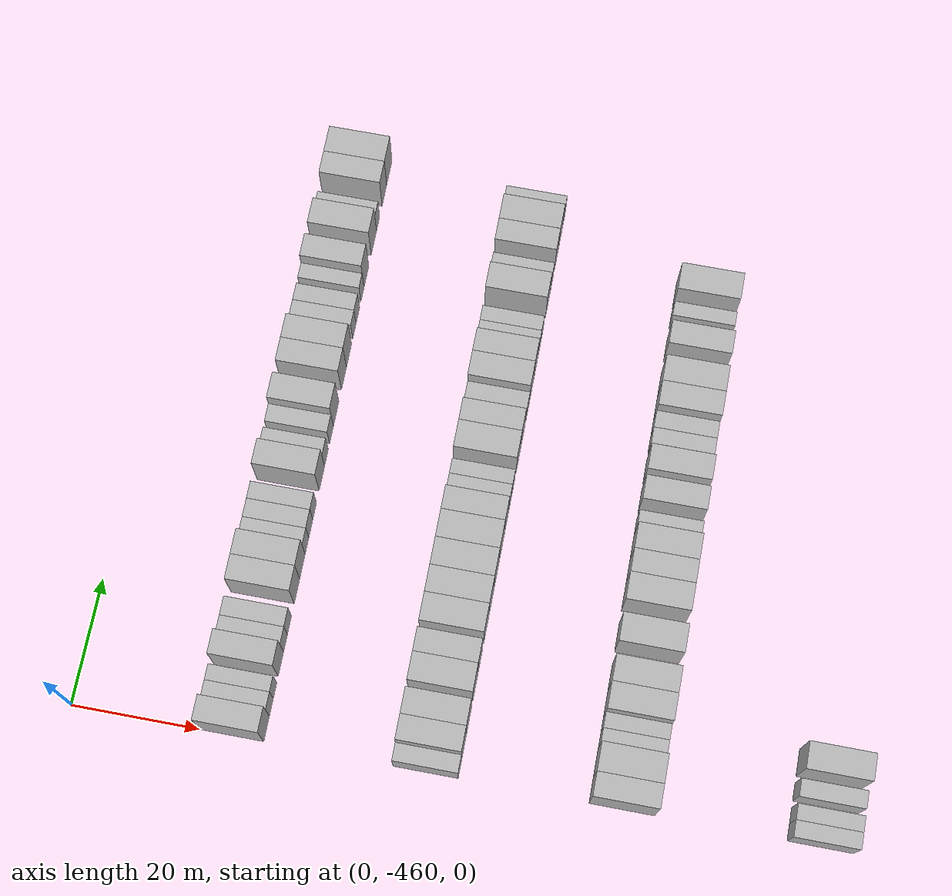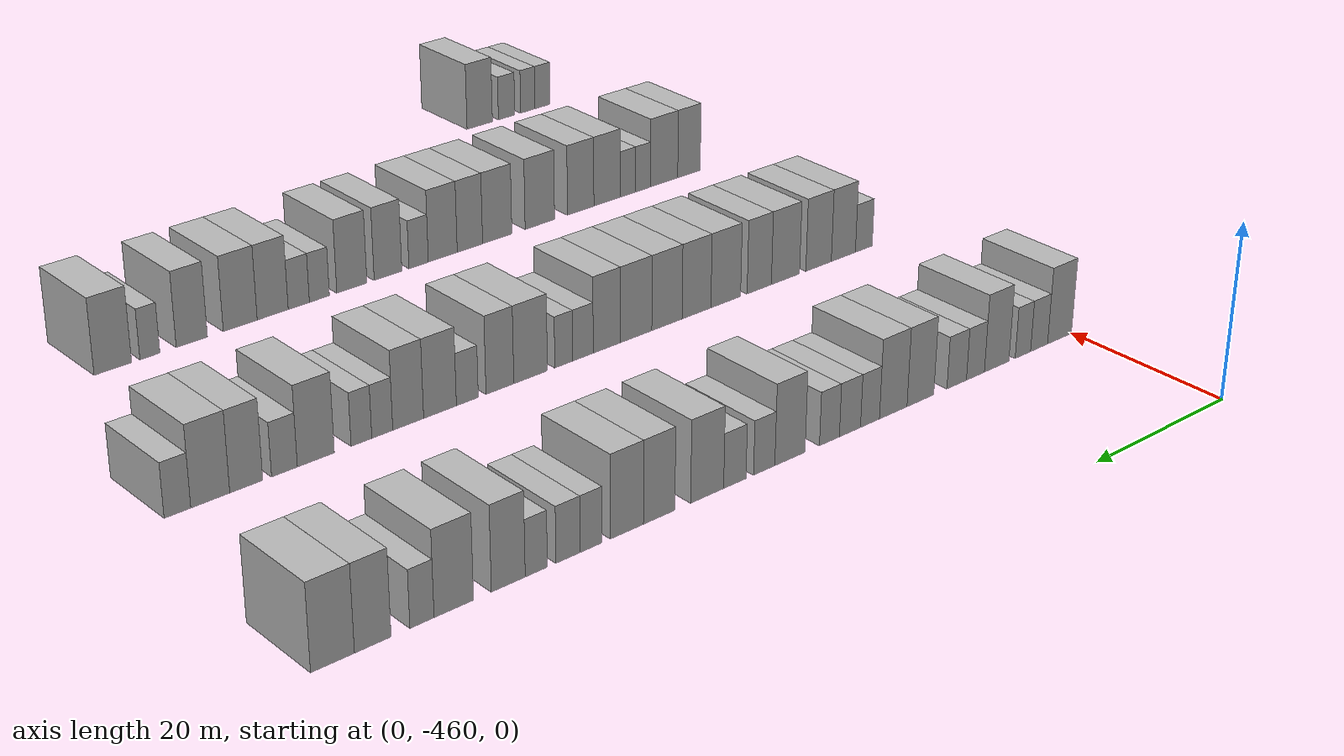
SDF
<sdf version="1.6">
 <world name="default">
  <model name="building_1">
   <static>1</static>
   <pose>25.0000 -458.0347 0 0.000000 0.000000 0.000000</pose>
   <link name="link">
    <pose>0 0 4.50 0 0 0</pose>
    <collision name="collision"><geometry><box><size>10.0000 3.9307 9.0000</size></box></geometry></collision>
    <visual name="visual">
     <cast_shadows>0</cast_shadows>
     <geometry><box><size>10.0000 3.9307 9.0000</size></box></geometry>
     <material>
      <script>
       <uri>model://HANNAS_wall/materials/scripts</uri>
       <uri>model://HANNAS_wall/materials/textures</uri>
       <name>vrc/HANNAS_wall</name>
      </script>
     </material>
    </visual>
   </link>
  </model>
  <model name="building_2">
   <static>1</static>
   <pose>25.0000 -454.6919 0 0.000000 0.000000 0.000000</pose>
   <link name="link">
    <pose>0 0 3.00 0 0 0</pose>
    <collision name="collision"><geometry><box><size>10.0000 2.7548 6.0000</size></box></geometry></collision>
    <visual name="visual">
     <cast_shadows>0</cast_shadows>
     <geometry><box><size>10.0000 2.7548 6.0000</size></box></geometry>
     <material>
      <script>
       <uri>model://HANNAS_wall/materials/scripts</uri>
       <uri>model://HANNAS_wall/materials/textures</uri>
       <name>vrc/HANNAS_wall</name>
      </script>
     </material>
    </visual>
   </link>
  </model>
  <model name="building_3">
   <static>1</static>
   <pose>25.0000 -452.0797 0 0.000000 0.000000 0.000000</pose>
   <link name="link">
    <pose>0 0 3.00 0 0 0</pose>
    <collision name="collision"><geometry><box><size>10.0000 2.4697 6.0000</size></box></geometry></collision>
    <visual name="visual">
     <cast_shadows>0</cast_shadows>
     <geometry><box><size>10.0000 2.4697 6.0000</size></box></geometry>
     <material>
      <script>
       <uri>model://HANNAS_wall/materials/scripts</uri>
       <uri>model://HANNAS_wall/materials/textures</uri>
       <name>vrc/HANNAS_wall</name>
      </script>
     </material>
    </visual>
   </link>
  </model>
  <model name="building_4">
   <static>1</static>
   <pose>25.0000 -447.9195 0 0.000000 0.000000 0.000000</pose>
   <link name="link">
    <pose>0 0 4.50 0 0 0</pose>
    <collision name="collision"><geometry><box><size>10.0000 3.8506 9.0000</size></box></geometry></collision>
    <visual name="visual">
     <cast_shadows>0</cast_shadows>
     <geometry><box><size>10.0000 3.8506 9.0000</size></box></geometry>
     <material>
      <script>
       <uri>model://HANNAS_wall/materials/scripts</uri>
       <uri>model://HANNAS_wall/materials/textures</uri>
       <name>vrc/HANNAS_wall</name>
      </script>
     </material>
    </visual>
   </link>
  </model>
  <model name="building_5">
   <static>1</static>
   <pose>25.0000 -444.6043 0 0.000000 0.000000 0.000000</pose>
   <link name="link">
    <pose>0 0 3.00 0 0 0</pose>
    <collision name="collision"><geometry><box><size>10.0000 2.7799 6.0000</size></box></geometry></collision>
    <visual name="visual">
     <cast_shadows>0</cast_shadows>
     <geometry><box><size>10.0000 2.7799 6.0000</size></box></geometry>
     <material>
      <script>
       <uri>model://HANNAS_wall/materials/scripts</uri>
       <uri>model://HANNAS_wall/materials/textures</uri>
       <name>vrc/HANNAS_wall</name>
      </script>
     </material>
    </visual>
   </link>
  </model>
  <model name="building_6">
   <static>1</static>
   <pose>25.0000 -441.7249 0 0.000000 0.000000 0.000000</pose>
   <link name="link">
    <pose>0 0 3.00 0 0 0</pose>
    <collision name="collision"><geometry><box><size>10.0000 2.9789 6.0000</size></box></geometry></collision>
    <visual name="visual">
     <cast_shadows>0</cast_shadows>
     <geometry><box><size>10.0000 2.9789 6.0000</size></box></geometry>
     <material>
      <script>
       <uri>model://HANNAS_wall/materials/scripts</uri>
       <uri>model://HANNAS_wall/materials/textures</uri>
       <name>vrc/HANNAS_wall</name>
      </script>
     </material>
    </visual>
   </link>
  </model>
  <model name="building_7">
   <static>1</static>
   <pose>25.0000 -436.2437 0 0.000000 0.000000 0.000000</pose>
   <link name="link">
    <pose>0 0 4.50 0 0 0</pose>
    <collision name="collision"><geometry><box><size>10.0000 3.9835 9.0000</size></box></geometry></collision>
    <visual name="visual">
     <cast_shadows>0</cast_shadows>
     <geometry><box><size>10.0000 3.9835 9.0000</size></box></geometry>
     <material>
      <script>
       <uri>model://HANNAS_wall/materials/scripts</uri>
       <uri>model://HANNAS_wall/materials/textures</uri>
       <name>vrc/HANNAS_wall</name>
      </script>
     </material>
    </visual>
   </link>
  </model>
  <model name="building_8">
   <static>1</static>
   <pose>25.0000 -432.2339 0 0.000000 0.000000 0.000000</pose>
   <link name="link">
    <pose>0 0 4.50 0 0 0</pose>
    <collision name="collision"><geometry><box><size>10.0000 4.0362 9.0000</size></box></geometry></collision>
    <visual name="visual">
     <cast_shadows>0</cast_shadows>
     <geometry><box><size>10.0000 4.0362 9.0000</size></box></geometry>
     <material>
      <script>
       <uri>model://HANNAS_wall/materials/scripts</uri>
       <uri>model://HANNAS_wall/materials/textures</uri>
       <name>vrc/HANNAS_wall</name>
      </script>
     </material>
    </visual>
   </link>
  </model>
  <model name="building_9">
   <static>1</static>
   <pose>25.0000 -428.8545 0 0.000000 0.000000 0.000000</pose>
   <link name="link">
    <pose>0 0 3.00 0 0 0</pose>
    <collision name="collision"><geometry><box><size>10.0000 2.7226 6.0000</size></box></geometry></collision>
    <visual name="visual">
     <cast_shadows>0</cast_shadows>
     <geometry><box><size>10.0000 2.7226 6.0000</size></box></geometry>
     <material>
      <script>
       <uri>model://HANNAS_wall/materials/scripts</uri>
       <uri>model://HANNAS_wall/materials/textures</uri>
       <name>vrc/HANNAS_wall</name>
      </script>
     </material>
    </visual>
   </link>
  </model>
  <model name="building_10">
   <static>1</static>
   <pose>25.0000 -425.9957 0 0.000000 0.000000 0.000000</pose>
   <link name="link">
    <pose>0 0 3.00 0 0 0</pose>
    <collision name="collision"><geometry><box><size>10.0000 2.9950 6.0000</size></box></geometry></collision>
    <visual name="visual">
     <cast_shadows>0</cast_shadows>
     <geometry><box><size>10.0000 2.9950 6.0000</size></box></geometry>
     <material>
      <script>
       <uri>model://HANNAS_wall/materials/scripts</uri>
       <uri>model://HANNAS_wall/materials/textures</uri>
       <name>vrc/HANNAS_wall</name>
      </script>
     </material>
    </visual>
   </link>
  </model>
  <model name="building_11">
   <static>1</static>
   <pose>25.0000 -423.1064 0 0.000000 0.000000 0.000000</pose>
   <link name="link">
    <pose>0 0 3.00 0 0 0</pose>
    <collision name="collision"><geometry><box><size>10.0000 2.7835 6.0000</size></box></geometry></collision>
    <visual name="visual">
     <cast_shadows>0</cast_shadows>
     <geometry><box><size>10.0000 2.7835 6.0000</size></box></geometry>
     <material>
      <script>
       <uri>model://HANNAS_wall/materials/scripts</uri>
       <uri>model://HANNAS_wall/materials/textures</uri>
       <name>vrc/HANNAS_wall</name>
      </script>
     </material>
    </visual>
   </link>
  </model>
  <model name="building_12">
   <static>1</static>
   <pose>25.0000 -417.6575 0 0.000000 0.000000 0.000000</pose>
   <link name="link">
    <pose>0 0 4.50 0 0 0</pose>
    <collision name="collision"><geometry><box><size>10.0000 4.1143 9.0000</size></box></geometry></collision>
    <visual name="visual">
     <cast_shadows>0</cast_shadows>
     <geometry><box><size>10.0000 4.1143 9.0000</size></box></geometry>
     <material>
      <script>
       <uri>model://HANNAS_wall/materials/scripts</uri>
       <uri>model://HANNAS_wall/materials/textures</uri>
       <name>vrc/HANNAS_wall</name>
      </script>
     </material>
    </visual>
   </link>
  </model>
  <model name="building_13">
   <static>1</static>
   <pose>25.0000 -414.1773 0 0.000000 0.000000 0.000000</pose>
   <link name="link">
    <pose>0 0 3.00 0 0 0</pose>
    <collision name="collision"><geometry><box><size>10.0000 2.8461 6.0000</size></box></geometry></collision>
    <visual name="visual">
     <cast_shadows>0</cast_shadows>
     <geometry><box><size>10.0000 2.8461 6.0000</size></box></geometry>
     <material>
      <script>
       <uri>model://HANNAS_wall/materials/scripts</uri>
       <uri>model://HANNAS_wall/materials/textures</uri>
       <name>vrc/HANNAS_wall</name>
      </script>
     </material>
    </visual>
   </link>
  </model>
  <model name="building_14">
   <static>1</static>
   <pose>25.0000 -410.2872 0 0.000000 0.000000 0.000000</pose>
   <link name="link">
    <pose>0 0 3.00 0 0 0</pose>
    <collision name="collision"><geometry><box><size>10.0000 2.9340 6.0000</size></box></geometry></collision>
    <visual name="visual">
     <cast_shadows>0</cast_shadows>
     <geometry><box><size>10.0000 2.9340 6.0000</size></box></geometry>
     <material>
      <script>
       <uri>model://HANNAS_wall/materials/scripts</uri>
       <uri>model://HANNAS_wall/materials/textures</uri>
       <name>vrc/HANNAS_wall</name>
      </script>
     </material>
    </visual>
   </link>
  </model>
  <model name="building_15">
   <static>1</static>
   <pose>25.0000 -406.6927 0 0.000000 0.000000 0.000000</pose>
   <link name="link">
    <pose>0 0 4.50 0 0 0</pose>
    <collision name="collision"><geometry><box><size>10.0000 4.2550 9.0000</size></box></geometry></collision>
    <visual name="visual">
     <cast_shadows>0</cast_shadows>
     <geometry><box><size>10.0000 4.2550 9.0000</size></box></geometry>
     <material>
      <script>
       <uri>model://HANNAS_wall/materials/scripts</uri>
       <uri>model://HANNAS_wall/materials/textures</uri>
       <name>vrc/HANNAS_wall</name>
      </script>
     </material>
    </visual>
   </link>
  </model>
  <model name="building_16">
   <static>1</static>
   <pose>25.0000 -400.6007 0 0.000000 0.000000 0.000000</pose>
   <link name="link">
    <pose>0 0 4.50 0 0 0</pose>
    <collision name="collision"><geometry><box><size>10.0000 3.9290 9.0000</size></box></geometry></collision>
    <visual name="visual">
     <cast_shadows>0</cast_shadows>
     <geometry><box><size>10.0000 3.9290 9.0000</size></box></geometry>
     <material>
      <script>
       <uri>model://HANNAS_wall/materials/scripts</uri>
       <uri>model://HANNAS_wall/materials/textures</uri>
       <name>vrc/HANNAS_wall</name>
      </script>
     </material>
    </visual>
   </link>
  </model>
  <model name="building_17">
   <static>1</static>
   <pose>25.0000 -396.6170 0 0.000000 0.000000 0.000000</pose>
   <link name="link">
    <pose>0 0 4.50 0 0 0</pose>
    <collision name="collision"><geometry><box><size>10.0000 4.0384 9.0000</size></box></geometry></collision>
    <visual name="visual">
     <cast_shadows>0</cast_shadows>
     <geometry><box><size>10.0000 4.0384 9.0000</size></box></geometry>
     <material>
      <script>
       <uri>model://HANNAS_wall/materials/scripts</uri>
       <uri>model://HANNAS_wall/materials/textures</uri>
       <name>vrc/HANNAS_wall</name>
      </script>
     </material>
    </visual>
   </link>
  </model>
  <model name="building_18">
   <static>1</static>
   <pose>25.0000 -392.2894 0 0.000000 0.000000 0.000000</pose>
   <link name="link">
    <pose>0 0 3.00 0 0 0</pose>
    <collision name="collision"><geometry><box><size>10.0000 2.6169 6.0000</size></box></geometry></collision>
    <visual name="visual">
     <cast_shadows>0</cast_shadows>
     <geometry><box><size>10.0000 2.6169 6.0000</size></box></geometry>
     <material>
      <script>
       <uri>model://HANNAS_wall/materials/scripts</uri>
       <uri>model://HANNAS_wall/materials/textures</uri>
       <name>vrc/HANNAS_wall</name>
      </script>
     </material>
    </visual>
   </link>
  </model>
  <model name="building_19">
   <static>1</static>
   <pose>25.0000 -389.5460 0 0.000000 0.000000 0.000000</pose>
   <link name="link">
    <pose>0 0 3.00 0 0 0</pose>
    <collision name="collision"><geometry><box><size>10.0000 2.8698 6.0000</size></box></geometry></collision>
    <visual name="visual">
     <cast_shadows>0</cast_shadows>
     <geometry><box><size>10.0000 2.8698 6.0000</size></box></geometry>
     <material>
      <script>
       <uri>model://HANNAS_wall/materials/scripts</uri>
       <uri>model://HANNAS_wall/materials/textures</uri>
       <name>vrc/HANNAS_wall</name>
      </script>
     </material>
    </visual>
   </link>
  </model>
  <model name="building_20">
   <static>1</static>
   <pose>25.0000 -385.8334 0 0.000000 0.000000 0.000000</pose>
   <link name="link">
    <pose>0 0 3.00 0 0 0</pose>
    <collision name="collision"><geometry><box><size>10.0000 2.5554 6.0000</size></box></geometry></collision>
    <visual name="visual">
     <cast_shadows>0</cast_shadows>
     <geometry><box><size>10.0000 2.5554 6.0000</size></box></geometry>
     <material>
      <script>
       <uri>model://HANNAS_wall/materials/scripts</uri>
       <uri>model://HANNAS_wall/materials/textures</uri>
       <name>vrc/HANNAS_wall</name>
      </script>
     </material>
    </visual>
   </link>
  </model>
  <model name="building_21">
   <static>1</static>
   <pose>25.0000 -382.6334 0 0.000000 0.000000 0.000000</pose>
   <link name="link">
    <pose>0 0 4.50 0 0 0</pose>
    <collision name="collision"><geometry><box><size>10.0000 3.8446 9.0000</size></box></geometry></collision>
    <visual name="visual">
     <cast_shadows>0</cast_shadows>
     <geometry><box><size>10.0000 3.8446 9.0000</size></box></geometry>
     <material>
      <script>
       <uri>model://HANNAS_wall/materials/scripts</uri>
       <uri>model://HANNAS_wall/materials/textures</uri>
       <name>vrc/HANNAS_wall</name>
      </script>
     </material>
    </visual>
   </link>
  </model>
  <model name="building_22">
   <static>1</static>
   <pose>25.0000 -376.5462 0 0.000000 0.000000 0.000000</pose>
   <link name="link">
    <pose>0 0 4.50 0 0 0</pose>
    <collision name="collision"><geometry><box><size>10.0000 4.3296 9.0000</size></box></geometry></collision>
    <visual name="visual">
     <cast_shadows>0</cast_shadows>
     <geometry><box><size>10.0000 4.3296 9.0000</size></box></geometry>
     <material>
      <script>
       <uri>model://HANNAS_wall/materials/scripts</uri>
       <uri>model://HANNAS_wall/materials/textures</uri>
       <name>vrc/HANNAS_wall</name>
      </script>
     </material>
    </visual>
   </link>
  </model>
  <model name="building_23">
   <static>1</static>
   <pose>25.0000 -373.0783 0 0.000000 0.000000 0.000000</pose>
   <link name="link">
    <pose>0 0 3.00 0 0 0</pose>
    <collision name="collision"><geometry><box><size>10.0000 2.6063 6.0000</size></box></geometry></collision>
    <visual name="visual">
     <cast_shadows>0</cast_shadows>
     <geometry><box><size>10.0000 2.6063 6.0000</size></box></geometry>
     <material>
      <script>
       <uri>model://HANNAS_wall/materials/scripts</uri>
       <uri>model://HANNAS_wall/materials/textures</uri>
       <name>vrc/HANNAS_wall</name>
      </script>
     </material>
    </visual>
   </link>
  </model>
  <model name="building_24">
   <static>1</static>
   <pose>25.0000 -367.8583 0 0.000000 0.000000 0.000000</pose>
   <link name="link">
    <pose>0 0 4.50 0 0 0</pose>
    <collision name="collision"><geometry><box><size>10.0000 3.8336 9.0000</size></box></geometry></collision>
    <visual name="visual">
     <cast_shadows>0</cast_shadows>
     <geometry><box><size>10.0000 3.8336 9.0000</size></box></geometry>
     <material>
      <script>
       <uri>model://HANNAS_wall/materials/scripts</uri>
       <uri>model://HANNAS_wall/materials/textures</uri>
       <name>vrc/HANNAS_wall</name>
      </script>
     </material>
    </visual>
   </link>
  </model>
  <model name="building_25">
   <static>1</static>
   <pose>25.0000 -363.6942 0 0.000000 0.000000 0.000000</pose>
   <link name="link">
    <pose>0 0 4.50 0 0 0</pose>
    <collision name="collision"><geometry><box><size>10.0000 4.4944 9.0000</size></box></geometry></collision>
    <visual name="visual">
     <cast_shadows>0</cast_shadows>
     <geometry><box><size>10.0000 4.4944 9.0000</size></box></geometry>
     <material>
      <script>
       <uri>model://HANNAS_wall/materials/scripts</uri>
       <uri>model://HANNAS_wall/materials/textures</uri>
       <name>vrc/HANNAS_wall</name>
      </script>
     </material>
    </visual>
   </link>
  </model>
  <model name="building_235">
   <static>1</static>
   <pose>55.0000 -458.6079 0 0.000000 0.000000 0.000000</pose>
   <link name="link">
    <pose>0 0 3.00 0 0 0</pose>
    <collision name="collision"><geometry><box><size>10.0000 2.7842 6.0000</size></box></geometry></collision>
    <visual name="visual">
     <cast_shadows>0</cast_shadows>
     <geometry><box><size>10.0000 2.7842 6.0000</size></box></geometry>
     <material>
      <script>
       <uri>model://HANNAS_wall/materials/scripts</uri>
       <uri>model://HANNAS_wall/materials/textures</uri>
       <name>vrc/HANNAS_wall</name>
      </script>
     </material>
    </visual>
   </link>
  </model>
  <model name="building_236">
   <static>1</static>
   <pose>55.0000 -455.2435 0 0.000000 0.000000 0.000000</pose>
   <link name="link">
    <pose>0 0 4.50 0 0 0</pose>
    <collision name="collision"><geometry><box><size>10.0000 3.9447 9.0000</size></box></geometry></collision>
    <visual name="visual">
     <cast_shadows>0</cast_shadows>
     <geometry><box><size>10.0000 3.9447 9.0000</size></box></geometry>
     <material>
      <script>
       <uri>model://HANNAS_wall/materials/scripts</uri>
       <uri>model://HANNAS_wall/materials/textures</uri>
       <name>vrc/HANNAS_wall</name>
      </script>
     </material>
    </visual>
   </link>
  </model>
  <model name="building_237">
   <static>1</static>
   <pose>55.0000 -451.2193 0 0.000000 0.000000 0.000000</pose>
   <link name="link">
    <pose>0 0 4.50 0 0 0</pose>
    <collision name="collision"><geometry><box><size>10.0000 4.1037 9.0000</size></box></geometry></collision>
    <visual name="visual">
     <cast_shadows>0</cast_shadows>
     <geometry><box><size>10.0000 4.1037 9.0000</size></box></geometry>
     <material>
      <script>
       <uri>model://HANNAS_wall/materials/scripts</uri>
       <uri>model://HANNAS_wall/materials/textures</uri>
       <name>vrc/HANNAS_wall</name>
      </script>
     </material>
    </visual>
   </link>
  </model>
  <model name="building_238">
   <static>1</static>
   <pose>55.0000 -445.9507 0 0.000000 0.000000 0.000000</pose>
   <link name="link">
    <pose>0 0 4.50 0 0 0</pose>
    <collision name="collision"><geometry><box><size>10.0000 4.4333 9.0000</size></box></geometry></collision>
    <visual name="visual">
     <cast_shadows>0</cast_shadows>
     <geometry><box><size>10.0000 4.4333 9.0000</size></box></geometry>
     <material>
      <script>
       <uri>model://HANNAS_wall/materials/scripts</uri>
       <uri>model://HANNAS_wall/materials/textures</uri>
       <name>vrc/HANNAS_wall</name>
      </script>
     </material>
    </visual>
   </link>
  </model>
  <model name="building_239">
   <static>1</static>
   <pose>55.0000 -441.8584 0 0.000000 0.000000 0.000000</pose>
   <link name="link">
    <pose>0 0 4.50 0 0 0</pose>
    <collision name="collision"><geometry><box><size>10.0000 3.7514 9.0000</size></box></geometry></collision>
    <visual name="visual">
     <cast_shadows>0</cast_shadows>
     <geometry><box><size>10.0000 3.7514 9.0000</size></box></geometry>
     <material>
      <script>
       <uri>model://HANNAS_wall/materials/scripts</uri>
       <uri>model://HANNAS_wall/materials/textures</uri>
       <name>vrc/HANNAS_wall</name>
      </script>
     </material>
    </visual>
   </link>
  </model>
  <model name="building_240">
   <static>1</static>
   <pose>55.0000 -436.7386 0 0.000000 0.000000 0.000000</pose>
   <link name="link">
    <pose>0 0 4.50 0 0 0</pose>
    <collision name="collision"><geometry><box><size>10.0000 4.4882 9.0000</size></box></geometry></collision>
    <visual name="visual">
     <cast_shadows>0</cast_shadows>
     <geometry><box><size>10.0000 4.4882 9.0000</size></box></geometry>
     <material>
      <script>
       <uri>model://HANNAS_wall/materials/scripts</uri>
       <uri>model://HANNAS_wall/materials/textures</uri>
       <name>vrc/HANNAS_wall</name>
      </script>
     </material>
    </visual>
   </link>
  </model>
  <model name="building_241">
   <static>1</static>
   <pose>55.0000 -432.3561 0 0.000000 0.000000 0.000000</pose>
   <link name="link">
    <pose>0 0 4.50 0 0 0</pose>
    <collision name="collision"><geometry><box><size>10.0000 4.2767 9.0000</size></box></geometry></collision>
    <visual name="visual">
     <cast_shadows>0</cast_shadows>
     <geometry><box><size>10.0000 4.2767 9.0000</size></box></geometry>
     <material>
      <script>
       <uri>model://HANNAS_wall/materials/scripts</uri>
       <uri>model://HANNAS_wall/materials/textures</uri>
       <name>vrc/HANNAS_wall</name>
      </script>
     </material>
    </visual>
   </link>
  </model>
  <model name="building_242">
   <static>1</static>
   <pose>55.0000 -428.0155 0 0.000000 0.000000 0.000000</pose>
   <link name="link">
    <pose>0 0 4.50 0 0 0</pose>
    <collision name="collision"><geometry><box><size>10.0000 4.4045 9.0000</size></box></geometry></collision>
    <visual name="visual">
     <cast_shadows>0</cast_shadows>
     <geometry><box><size>10.0000 4.4045 9.0000</size></box></geometry>
     <material>
      <script>
       <uri>model://HANNAS_wall/materials/scripts</uri>
       <uri>model://HANNAS_wall/materials/textures</uri>
       <name>vrc/HANNAS_wall</name>
      </script>
     </material>
    </visual>
   </link>
  </model>
  <model name="building_243">
   <static>1</static>
   <pose>55.0000 -423.5746 0 0.000000 0.000000 0.000000</pose>
   <link name="link">
    <pose>0 0 4.50 0 0 0</pose>
    <collision name="collision"><geometry><box><size>10.0000 4.4774 9.0000</size></box></geometry></collision>
    <visual name="visual">
     <cast_shadows>0</cast_shadows>
     <geometry><box><size>10.0000 4.4774 9.0000</size></box></geometry>
     <material>
      <script>
       <uri>model://HANNAS_wall/materials/scripts</uri>
       <uri>model://HANNAS_wall/materials/textures</uri>
       <name>vrc/HANNAS_wall</name>
      </script>
     </material>
    </visual>
   </link>
  </model>
  <model name="building_244">
   <static>1</static>
   <pose>55.0000 -419.4328 0 0.000000 0.000000 0.000000</pose>
   <link name="link">
    <pose>0 0 4.50 0 0 0</pose>
    <collision name="collision"><geometry><box><size>10.0000 3.8063 9.0000</size></box></geometry></collision>
    <visual name="visual">
     <cast_shadows>0</cast_shadows>
     <geometry><box><size>10.0000 3.8063 9.0000</size></box></geometry>
     <material>
      <script>
       <uri>model://HANNAS_wall/materials/scripts</uri>
       <uri>model://HANNAS_wall/materials/textures</uri>
       <name>vrc/HANNAS_wall</name>
      </script>
     </material>
    </visual>
   </link>
  </model>
  <model name="building_245">
   <static>1</static>
   <pose>55.0000 -416.1166 0 0.000000 0.000000 0.000000</pose>
   <link name="link">
    <pose>0 0 3.00 0 0 0</pose>
    <collision name="collision"><geometry><box><size>10.0000 2.8261 6.0000</size></box></geometry></collision>
    <visual name="visual">
     <cast_shadows>0</cast_shadows>
     <geometry><box><size>10.0000 2.8261 6.0000</size></box></geometry>
     <material>
      <script>
       <uri>model://HANNAS_wall/materials/scripts</uri>
       <uri>model://HANNAS_wall/materials/textures</uri>
       <name>vrc/HANNAS_wall</name>
      </script>
     </material>
    </visual>
   </link>
  </model>
  <model name="building_246">
   <static>1</static>
   <pose>55.0000 -413.4800 0 0.000000 0.000000 0.000000</pose>
   <link name="link">
    <pose>0 0 3.00 0 0 0</pose>
    <collision name="collision"><geometry><box><size>10.0000 2.4470 6.0000</size></box></geometry></collision>
    <visual name="visual">
     <cast_shadows>0</cast_shadows>
     <geometry><box><size>10.0000 2.4470 6.0000</size></box></geometry>
     <material>
      <script>
       <uri>model://HANNAS_wall/materials/scripts</uri>
       <uri>model://HANNAS_wall/materials/textures</uri>
       <name>vrc/HANNAS_wall</name>
      </script>
     </material>
    </visual>
   </link>
  </model>
  <model name="building_247">
   <static>1</static>
   <pose>55.0000 -409.0169 0 0.000000 0.000000 0.000000</pose>
   <link name="link">
    <pose>0 0 4.50 0 0 0</pose>
    <collision name="collision"><geometry><box><size>10.0000 4.4792 9.0000</size></box></geometry></collision>
    <visual name="visual">
     <cast_shadows>0</cast_shadows>
     <geometry><box><size>10.0000 4.4792 9.0000</size></box></geometry>
     <material>
      <script>
       <uri>model://HANNAS_wall/materials/scripts</uri>
       <uri>model://HANNAS_wall/materials/textures</uri>
       <name>vrc/HANNAS_wall</name>
      </script>
     </material>
    </visual>
   </link>
  </model>
  <model name="building_248">
   <static>1</static>
   <pose>55.0000 -404.9539 0 0.000000 0.000000 0.000000</pose>
   <link name="link">
    <pose>0 0 4.50 0 0 0</pose>
    <collision name="collision"><geometry><box><size>10.0000 3.6469 9.0000</size></box></geometry></collision>
    <visual name="visual">
     <cast_shadows>0</cast_shadows>
     <geometry><box><size>10.0000 3.6469 9.0000</size></box></geometry>
     <material>
      <script>
       <uri>model://HANNAS_wall/materials/scripts</uri>
       <uri>model://HANNAS_wall/materials/textures</uri>
       <name>vrc/HANNAS_wall</name>
      </script>
     </material>
    </visual>
   </link>
  </model>
  <model name="building_249">
   <static>1</static>
   <pose>55.0000 -400.7268 0 0.000000 0.000000 0.000000</pose>
   <link name="link">
    <pose>0 0 3.00 0 0 0</pose>
    <collision name="collision"><geometry><box><size>10.0000 2.8072 6.0000</size></box></geometry></collision>
    <visual name="visual">
     <cast_shadows>0</cast_shadows>
     <geometry><box><size>10.0000 2.8072 6.0000</size></box></geometry>
     <material>
      <script>
       <uri>model://HANNAS_wall/materials/scripts</uri>
       <uri>model://HANNAS_wall/materials/textures</uri>
       <name>vrc/HANNAS_wall</name>
      </script>
     </material>
    </visual>
   </link>
  </model>
  <model name="building_250">
   <static>1</static>
   <pose>55.0000 -397.2548 0 0.000000 0.000000 0.000000</pose>
   <link name="link">
    <pose>0 0 4.50 0 0 0</pose>
    <collision name="collision"><geometry><box><size>10.0000 4.1368 9.0000</size></box></geometry></collision>
    <visual name="visual">
     <cast_shadows>0</cast_shadows>
     <geometry><box><size>10.0000 4.1368 9.0000</size></box></geometry>
     <material>
      <script>
       <uri>model://HANNAS_wall/materials/scripts</uri>
       <uri>model://HANNAS_wall/materials/textures</uri>
       <name>vrc/HANNAS_wall</name>
      </script>
     </material>
    </visual>
   </link>
  </model>
  <model name="building_251">
   <static>1</static>
   <pose>55.0000 -393.2729 0 0.000000 0.000000 0.000000</pose>
   <link name="link">
    <pose>0 0 4.50 0 0 0</pose>
    <collision name="collision"><geometry><box><size>10.0000 3.8271 9.0000</size></box></geometry></collision>
    <visual name="visual">
     <cast_shadows>0</cast_shadows>
     <geometry><box><size>10.0000 3.8271 9.0000</size></box></geometry>
     <material>
      <script>
       <uri>model://HANNAS_wall/materials/scripts</uri>
       <uri>model://HANNAS_wall/materials/textures</uri>
       <name>vrc/HANNAS_wall</name>
      </script>
     </material>
    </visual>
   </link>
  </model>
  <model name="building_252">
   <static>1</static>
   <pose>55.0000 -390.0816 0 0.000000 0.000000 0.000000</pose>
   <link name="link">
    <pose>0 0 3.00 0 0 0</pose>
    <collision name="collision"><geometry><box><size>10.0000 2.5555 6.0000</size></box></geometry></collision>
    <visual name="visual">
     <cast_shadows>0</cast_shadows>
     <geometry><box><size>10.0000 2.5555 6.0000</size></box></geometry>
     <material>
      <script>
       <uri>model://HANNAS_wall/materials/scripts</uri>
       <uri>model://HANNAS_wall/materials/textures</uri>
       <name>vrc/HANNAS_wall</name>
      </script>
     </material>
    </visual>
   </link>
  </model>
  <model name="building_253">
   <static>1</static>
   <pose>55.0000 -387.5562 0 0.000000 0.000000 0.000000</pose>
   <link name="link">
    <pose>0 0 3.00 0 0 0</pose>
    <collision name="collision"><geometry><box><size>10.0000 2.4954 6.0000</size></box></geometry></collision>
    <visual name="visual">
     <cast_shadows>0</cast_shadows>
     <geometry><box><size>10.0000 2.4954 6.0000</size></box></geometry>
     <material>
      <script>
       <uri>model://HANNAS_wall/materials/scripts</uri>
       <uri>model://HANNAS_wall/materials/textures</uri>
       <name>vrc/HANNAS_wall</name>
      </script>
     </material>
    </visual>
   </link>
  </model>
  <model name="building_254">
   <static>1</static>
   <pose>55.0000 -382.1403 0 0.000000 0.000000 0.000000</pose>
   <link name="link">
    <pose>0 0 4.50 0 0 0</pose>
    <collision name="collision"><geometry><box><size>10.0000 4.3363 9.0000</size></box></geometry></collision>
    <visual name="visual">
     <cast_shadows>0</cast_shadows>
     <geometry><box><size>10.0000 4.3363 9.0000</size></box></geometry>
     <material>
      <script>
       <uri>model://HANNAS_wall/materials/scripts</uri>
       <uri>model://HANNAS_wall/materials/textures</uri>
       <name>vrc/HANNAS_wall</name>
      </script>
     </material>
    </visual>
   </link>
  </model>
  <model name="building_255">
   <static>1</static>
   <pose>55.0000 -378.4859 0 0.000000 0.000000 0.000000</pose>
   <link name="link">
    <pose>0 0 3.00 0 0 0</pose>
    <collision name="collision"><geometry><box><size>10.0000 2.9725 6.0000</size></box></geometry></collision>
    <visual name="visual">
     <cast_shadows>0</cast_shadows>
     <geometry><box><size>10.0000 2.9725 6.0000</size></box></geometry>
     <material>
      <script>
       <uri>model://HANNAS_wall/materials/scripts</uri>
       <uri>model://HANNAS_wall/materials/textures</uri>
       <name>vrc/HANNAS_wall</name>
      </script>
     </material>
    </visual>
   </link>
  </model>
  <model name="building_256">
   <static>1</static>
   <pose>55.0000 -374.1370 0 0.000000 0.000000 0.000000</pose>
   <link name="link">
    <pose>0 0 4.50 0 0 0</pose>
    <collision name="collision"><geometry><box><size>10.0000 3.7255 9.0000</size></box></geometry></collision>
    <visual name="visual">
     <cast_shadows>0</cast_shadows>
     <geometry><box><size>10.0000 3.7255 9.0000</size></box></geometry>
     <material>
      <script>
       <uri>model://HANNAS_wall/materials/scripts</uri>
       <uri>model://HANNAS_wall/materials/textures</uri>
       <name>vrc/HANNAS_wall</name>
      </script>
     </material>
    </visual>
   </link>
  </model>
  <model name="building_257">
   <static>1</static>
   <pose>55.0000 -370.1233 0 0.000000 0.000000 0.000000</pose>
   <link name="link">
    <pose>0 0 4.50 0 0 0</pose>
    <collision name="collision"><geometry><box><size>10.0000 4.3018 9.0000</size></box></geometry></collision>
    <visual name="visual">
     <cast_shadows>0</cast_shadows>
     <geometry><box><size>10.0000 4.3018 9.0000</size></box></geometry>
     <material>
      <script>
       <uri>model://HANNAS_wall/materials/scripts</uri>
       <uri>model://HANNAS_wall/materials/textures</uri>
       <name>vrc/HANNAS_wall</name>
      </script>
     </material>
    </visual>
   </link>
  </model>
  <model name="building_258">
   <static>1</static>
   <pose>55.0000 -366.5238 0 0.000000 0.000000 0.000000</pose>
   <link name="link">
    <pose>0 0 3.00 0 0 0</pose>
    <collision name="collision"><geometry><box><size>10.0000 2.8971 6.0000</size></box></geometry></collision>
    <visual name="visual">
     <cast_shadows>0</cast_shadows>
     <geometry><box><size>10.0000 2.8971 6.0000</size></box></geometry>
     <material>
      <script>
       <uri>model://HANNAS_wall/materials/scripts</uri>
       <uri>model://HANNAS_wall/materials/textures</uri>
       <name>vrc/HANNAS_wall</name>
      </script>
     </material>
    </visual>
   </link>
  </model>
  <model name="building_468">
   <static>1</static>
   <pose>85.0000 -458.1163 0 0.000000 0.000000 0.000000</pose>
   <link name="link">
    <pose>0 0 4.50 0 0 0</pose>
    <collision name="collision"><geometry><box><size>10.0000 3.7674 9.0000</size></box></geometry></collision>
    <visual name="visual">
     <cast_shadows>0</cast_shadows>
     <geometry><box><size>10.0000 3.7674 9.0000</size></box></geometry>
     <material>
      <script>
       <uri>model://HANNAS_wall/materials/scripts</uri>
       <uri>model://HANNAS_wall/materials/textures</uri>
       <name>vrc/HANNAS_wall</name>
      </script>
     </material>
    </visual>
   </link>
  </model>
  <model name="building_469">
   <static>1</static>
   <pose>85.0000 -453.9906 0 0.000000 0.000000 0.000000</pose>
   <link name="link">
    <pose>0 0 4.50 0 0 0</pose>
    <collision name="collision"><geometry><box><size>10.0000 4.4840 9.0000</size></box></geometry></collision>
    <visual name="visual">
     <cast_shadows>0</cast_shadows>
     <geometry><box><size>10.0000 4.4840 9.0000</size></box></geometry>
     <material>
      <script>
       <uri>model://HANNAS_wall/materials/scripts</uri>
       <uri>model://HANNAS_wall/materials/textures</uri>
       <name>vrc/HANNAS_wall</name>
      </script>
     </material>
    </visual>
   </link>
  </model>
  <model name="building_470">
   <static>1</static>
   <pose>85.0000 -450.5226 0 0.000000 0.000000 0.000000</pose>
   <link name="link">
    <pose>0 0 3.00 0 0 0</pose>
    <collision name="collision"><geometry><box><size>10.0000 2.4520 6.0000</size></box></geometry></collision>
    <visual name="visual">
     <cast_shadows>0</cast_shadows>
     <geometry><box><size>10.0000 2.4520 6.0000</size></box></geometry>
     <material>
      <script>
       <uri>model://HANNAS_wall/materials/scripts</uri>
       <uri>model://HANNAS_wall/materials/textures</uri>
       <name>vrc/HANNAS_wall</name>
      </script>
     </material>
    </visual>
   </link>
  </model>
  <model name="building_471">
   <static>1</static>
   <pose>85.0000 -448.0763 0 0.000000 0.000000 0.000000</pose>
   <link name="link">
    <pose>0 0 3.00 0 0 0</pose>
    <collision name="collision"><geometry><box><size>10.0000 2.4408 6.0000</size></box></geometry></collision>
    <visual name="visual">
     <cast_shadows>0</cast_shadows>
     <geometry><box><size>10.0000 2.4408 6.0000</size></box></geometry>
     <material>
      <script>
       <uri>model://HANNAS_wall/materials/scripts</uri>
       <uri>model://HANNAS_wall/materials/textures</uri>
       <name>vrc/HANNAS_wall</name>
      </script>
     </material>
    </visual>
   </link>
  </model>
  <model name="building_472">
   <static>1</static>
   <pose>85.0000 -444.7473 0 0.000000 0.000000 0.000000</pose>
   <link name="link">
    <pose>0 0 4.50 0 0 0</pose>
    <collision name="collision"><geometry><box><size>10.0000 4.2172 9.0000</size></box></geometry></collision>
    <visual name="visual">
     <cast_shadows>0</cast_shadows>
     <geometry><box><size>10.0000 4.2172 9.0000</size></box></geometry>
     <material>
      <script>
       <uri>model://HANNAS_wall/materials/scripts</uri>
       <uri>model://HANNAS_wall/materials/textures</uri>
       <name>vrc/HANNAS_wall</name>
      </script>
     </material>
    </visual>
   </link>
  </model>
  <model name="building_473">
   <static>1</static>
   <pose>85.0000 -440.5682 0 0.000000 0.000000 0.000000</pose>
   <link name="link">
    <pose>0 0 4.50 0 0 0</pose>
    <collision name="collision"><geometry><box><size>10.0000 4.1410 9.0000</size></box></geometry></collision>
    <visual name="visual">
     <cast_shadows>0</cast_shadows>
     <geometry><box><size>10.0000 4.1410 9.0000</size></box></geometry>
     <material>
      <script>
       <uri>model://HANNAS_wall/materials/scripts</uri>
       <uri>model://HANNAS_wall/materials/textures</uri>
       <name>vrc/HANNAS_wall</name>
      </script>
     </material>
    </visual>
   </link>
  </model>
  <model name="building_474">
   <static>1</static>
   <pose>85.0000 -434.2512 0 0.000000 0.000000 0.000000</pose>
   <link name="link">
    <pose>0 0 4.50 0 0 0</pose>
    <collision name="collision"><geometry><box><size>10.0000 4.4929 9.0000</size></box></geometry></collision>
    <visual name="visual">
     <cast_shadows>0</cast_shadows>
     <geometry><box><size>10.0000 4.4929 9.0000</size></box></geometry>
     <material>
      <script>
       <uri>model://HANNAS_wall/materials/scripts</uri>
       <uri>model://HANNAS_wall/materials/textures</uri>
       <name>vrc/HANNAS_wall</name>
      </script>
     </material>
    </visual>
   </link>
  </model>
  <model name="building_475">
   <static>1</static>
   <pose>85.0000 -427.8310 0 0.000000 0.000000 0.000000</pose>
   <link name="link">
    <pose>0 0 4.50 0 0 0</pose>
    <collision name="collision"><geometry><box><size>10.0000 4.3476 9.0000</size></box></geometry></collision>
    <visual name="visual">
     <cast_shadows>0</cast_shadows>
     <geometry><box><size>10.0000 4.3476 9.0000</size></box></geometry>
     <material>
      <script>
       <uri>model://HANNAS_wall/materials/scripts</uri>
       <uri>model://HANNAS_wall/materials/textures</uri>
       <name>vrc/HANNAS_wall</name>
      </script>
     </material>
    </visual>
   </link>
  </model>
  <model name="building_476">
   <static>1</static>
   <pose>85.0000 -423.8026 0 0.000000 0.000000 0.000000</pose>
   <link name="link">
    <pose>0 0 4.50 0 0 0</pose>
    <collision name="collision"><geometry><box><size>10.0000 3.7091 9.0000</size></box></geometry></collision>
    <visual name="visual">
     <cast_shadows>0</cast_shadows>
     <geometry><box><size>10.0000 3.7091 9.0000</size></box></geometry>
     <material>
      <script>
       <uri>model://HANNAS_wall/materials/scripts</uri>
       <uri>model://HANNAS_wall/materials/textures</uri>
       <name>vrc/HANNAS_wall</name>
      </script>
     </material>
    </visual>
   </link>
  </model>
  <model name="building_477">
   <static>1</static>
   <pose>85.0000 -419.8709 0 0.000000 0.000000 0.000000</pose>
   <link name="link">
    <pose>0 0 4.50 0 0 0</pose>
    <collision name="collision"><geometry><box><size>10.0000 4.1543 9.0000</size></box></geometry></collision>
    <visual name="visual">
     <cast_shadows>0</cast_shadows>
     <geometry><box><size>10.0000 4.1543 9.0000</size></box></geometry>
     <material>
      <script>
       <uri>model://HANNAS_wall/materials/scripts</uri>
       <uri>model://HANNAS_wall/materials/textures</uri>
       <name>vrc/HANNAS_wall</name>
      </script>
     </material>
    </visual>
   </link>
  </model>
  <model name="building_478">
   <static>1</static>
   <pose>85.0000 -416.4170 0 0.000000 0.000000 0.000000</pose>
   <link name="link">
    <pose>0 0 3.00 0 0 0</pose>
    <collision name="collision"><geometry><box><size>10.0000 2.7535 6.0000</size></box></geometry></collision>
    <visual name="visual">
     <cast_shadows>0</cast_shadows>
     <geometry><box><size>10.0000 2.7535 6.0000</size></box></geometry>
     <material>
      <script>
       <uri>model://HANNAS_wall/materials/scripts</uri>
       <uri>model://HANNAS_wall/materials/textures</uri>
       <name>vrc/HANNAS_wall</name>
      </script>
     </material>
    </visual>
   </link>
  </model>
  <model name="building_479">
   <static>1</static>
   <pose>85.0000 -412.1131 0 0.000000 0.000000 0.000000</pose>
   <link name="link">
    <pose>0 0 4.50 0 0 0</pose>
    <collision name="collision"><geometry><box><size>10.0000 3.8543 9.0000</size></box></geometry></collision>
    <visual name="visual">
     <cast_shadows>0</cast_shadows>
     <geometry><box><size>10.0000 3.8543 9.0000</size></box></geometry>
     <material>
      <script>
       <uri>model://HANNAS_wall/materials/scripts</uri>
       <uri>model://HANNAS_wall/materials/textures</uri>
       <name>vrc/HANNAS_wall</name>
      </script>
     </material>
    </visual>
   </link>
  </model>
  <model name="building_480">
   <static>1</static>
   <pose>85.0000 -407.1362 0 0.000000 0.000000 0.000000</pose>
   <link name="link">
    <pose>0 0 4.50 0 0 0</pose>
    <collision name="collision"><geometry><box><size>10.0000 4.0996 9.0000</size></box></geometry></collision>
    <visual name="visual">
     <cast_shadows>0</cast_shadows>
     <geometry><box><size>10.0000 4.0996 9.0000</size></box></geometry>
     <material>
      <script>
       <uri>model://HANNAS_wall/materials/scripts</uri>
       <uri>model://HANNAS_wall/materials/textures</uri>
       <name>vrc/HANNAS_wall</name>
      </script>
     </material>
    </visual>
   </link>
  </model>
  <model name="building_481">
   <static>1</static>
   <pose>85.0000 -402.7498 0 0.000000 0.000000 0.000000</pose>
   <link name="link">
    <pose>0 0 3.00 0 0 0</pose>
    <collision name="collision"><geometry><box><size>10.0000 2.6731 6.0000</size></box></geometry></collision>
    <visual name="visual">
     <cast_shadows>0</cast_shadows>
     <geometry><box><size>10.0000 2.6731 6.0000</size></box></geometry>
     <material>
      <script>
       <uri>model://HANNAS_wall/materials/scripts</uri>
       <uri>model://HANNAS_wall/materials/textures</uri>
       <name>vrc/HANNAS_wall</name>
      </script>
     </material>
    </visual>
   </link>
  </model>
  <model name="building_482">
   <static>1</static>
   <pose>85.0000 -400.0148 0 0.000000 0.000000 0.000000</pose>
   <link name="link">
    <pose>0 0 3.00 0 0 0</pose>
    <collision name="collision"><geometry><box><size>10.0000 2.7969 6.0000</size></box></geometry></collision>
    <visual name="visual">
     <cast_shadows>0</cast_shadows>
     <geometry><box><size>10.0000 2.7969 6.0000</size></box></geometry>
     <material>
      <script>
       <uri>model://HANNAS_wall/materials/scripts</uri>
       <uri>model://HANNAS_wall/materials/textures</uri>
       <name>vrc/HANNAS_wall</name>
      </script>
     </material>
    </visual>
   </link>
  </model>
  <model name="building_483">
   <static>1</static>
   <pose>85.0000 -396.5971 0 0.000000 0.000000 0.000000</pose>
   <link name="link">
    <pose>0 0 4.50 0 0 0</pose>
    <collision name="collision"><geometry><box><size>10.0000 4.0385 9.0000</size></box></geometry></collision>
    <visual name="visual">
     <cast_shadows>0</cast_shadows>
     <geometry><box><size>10.0000 4.0385 9.0000</size></box></geometry>
     <material>
      <script>
       <uri>model://HANNAS_wall/materials/scripts</uri>
       <uri>model://HANNAS_wall/materials/textures</uri>
       <name>vrc/HANNAS_wall</name>
      </script>
     </material>
    </visual>
   </link>
  </model>
  <model name="building_484">
   <static>1</static>
   <pose>85.0000 -392.4117 0 0.000000 0.000000 0.000000</pose>
   <link name="link">
    <pose>0 0 4.50 0 0 0</pose>
    <collision name="collision"><geometry><box><size>10.0000 4.3324 9.0000</size></box></geometry></collision>
    <visual name="visual">
     <cast_shadows>0</cast_shadows>
     <geometry><box><size>10.0000 4.3324 9.0000</size></box></geometry>
     <material>
      <script>
       <uri>model://HANNAS_wall/materials/scripts</uri>
       <uri>model://HANNAS_wall/materials/textures</uri>
       <name>vrc/HANNAS_wall</name>
      </script>
     </material>
    </visual>
   </link>
  </model>
  <model name="building_485">
   <static>1</static>
   <pose>85.0000 -386.3051 0 0.000000 0.000000 0.000000</pose>
   <link name="link">
    <pose>0 0 4.50 0 0 0</pose>
    <collision name="collision"><geometry><box><size>10.0000 3.8808 9.0000</size></box></geometry></collision>
    <visual name="visual">
     <cast_shadows>0</cast_shadows>
     <geometry><box><size>10.0000 3.8808 9.0000</size></box></geometry>
     <material>
      <script>
       <uri>model://HANNAS_wall/materials/scripts</uri>
       <uri>model://HANNAS_wall/materials/textures</uri>
       <name>vrc/HANNAS_wall</name>
      </script>
     </material>
    </visual>
   </link>
  </model>
  <model name="building_486">
   <static>1</static>
   <pose>85.0000 -381.1520 0 0.000000 0.000000 0.000000</pose>
   <link name="link">
    <pose>0 0 3.00 0 0 0</pose>
    <collision name="collision"><geometry><box><size>10.0000 2.4254 6.0000</size></box></geometry></collision>
    <visual name="visual">
     <cast_shadows>0</cast_shadows>
     <geometry><box><size>10.0000 2.4254 6.0000</size></box></geometry>
     <material>
      <script>
       <uri>model://HANNAS_wall/materials/scripts</uri>
       <uri>model://HANNAS_wall/materials/textures</uri>
       <name>vrc/HANNAS_wall</name>
      </script>
     </material>
    </visual>
   </link>
  </model>
  <model name="building_487">
   <static>1</static>
   <pose>85.0000 -376.7039 0 0.000000 0.000000 0.000000</pose>
   <link name="link">
    <pose>0 0 4.50 0 0 0</pose>
    <collision name="collision"><geometry><box><size>10.0000 4.4708 9.0000</size></box></geometry></collision>
    <visual name="visual">
     <cast_shadows>0</cast_shadows>
     <geometry><box><size>10.0000 4.4708 9.0000</size></box></geometry>
     <material>
      <script>
       <uri>model://HANNAS_wall/materials/scripts</uri>
       <uri>model://HANNAS_wall/materials/textures</uri>
       <name>vrc/HANNAS_wall</name>
      </script>
     </material>
    </visual>
   </link>
  </model>
  <model name="building_694">
   <static>1</static>
   <pose>115.0000 -458.7110 0 0.000000 0.000000 0.000000</pose>
   <link name="link">
    <pose>0 0 3.00 0 0 0</pose>
    <collision name="collision"><geometry><box><size>10.0000 2.5779 6.0000</size></box></geometry></collision>
    <visual name="visual">
     <cast_shadows>0</cast_shadows>
     <geometry><box><size>10.0000 2.5779 6.0000</size></box></geometry>
     <material>
      <script>
       <uri>model://HANNAS_wall/materials/scripts</uri>
       <uri>model://HANNAS_wall/materials/textures</uri>
       <name>vrc/HANNAS_wall</name>
      </script>
     </material>
    </visual>
   </link>
  </model>
  <model name="building_695">
   <static>1</static>
   <pose>115.0000 -456.2021 0 0.000000 0.000000 0.000000</pose>
   <link name="link">
    <pose>0 0 3.00 0 0 0</pose>
    <collision name="collision"><geometry><box><size>10.0000 2.4400 6.0000</size></box></geometry></collision>
    <visual name="visual">
     <cast_shadows>0</cast_shadows>
     <geometry><box><size>10.0000 2.4400 6.0000</size></box></geometry>
     <material>
      <script>
       <uri>model://HANNAS_wall/materials/scripts</uri>
       <uri>model://HANNAS_wall/materials/textures</uri>
       <name>vrc/HANNAS_wall</name>
      </script>
     </material>
    </visual>
   </link>
  </model>
  <model name="building_696">
   <static>1</static>
   <pose>115.0000 -452.6112 0 0.000000 0.000000 0.000000</pose>
   <link name="link">
    <pose>0 0 3.00 0 0 0</pose>
    <collision name="collision"><geometry><box><size>10.0000 2.7419 6.0000</size></box></geometry></collision>
    <visual name="visual">
     <cast_shadows>0</cast_shadows>
     <geometry><box><size>10.0000 2.7419 6.0000</size></box></geometry>
     <material>
      <script>
       <uri>model://HANNAS_wall/materials/scripts</uri>
       <uri>model://HANNAS_wall/materials/textures</uri>
       <name>vrc/HANNAS_wall</name>
      </script>
     </material>
    </visual>
   </link>
  </model>
  <model name="building_697">
   <static>1</static>
   <pose>115.0000 -448.1523 0 0.000000 0.000000 0.000000</pose>
   <link name="link">
    <pose>0 0 4.50 0 0 0</pose>
    <collision name="collision"><geometry><box><size>10.0000 4.1759 9.0000</size></box></geometry></collision>
    <visual name="visual">
     <cast_shadows>0</cast_shadows>
     <geometry><box><size>10.0000 4.1759 9.0000</size></box></geometry>
     <material>
      <script>
       <uri>model://HANNAS_wall/materials/scripts</uri>
       <uri>model://HANNAS_wall/materials/textures</uri>
       <name>vrc/HANNAS_wall</name>
      </script>
     </material>
    </visual>
   </link>
  </model>
 </world>
</sdf>
